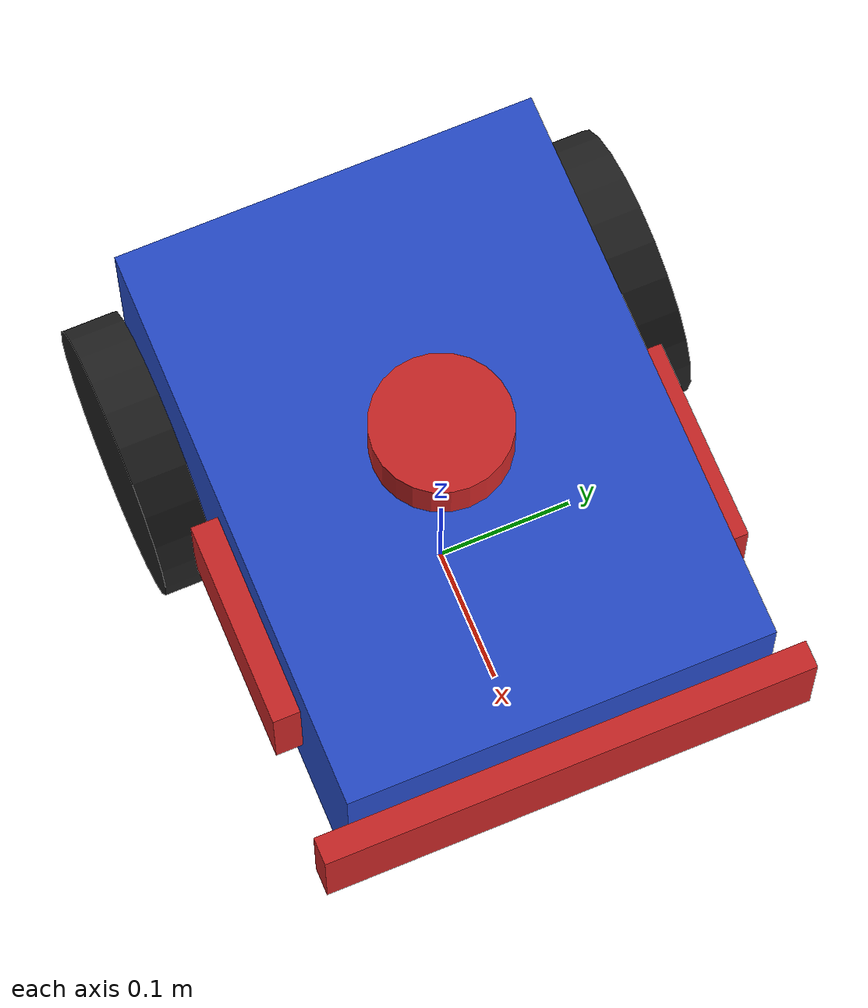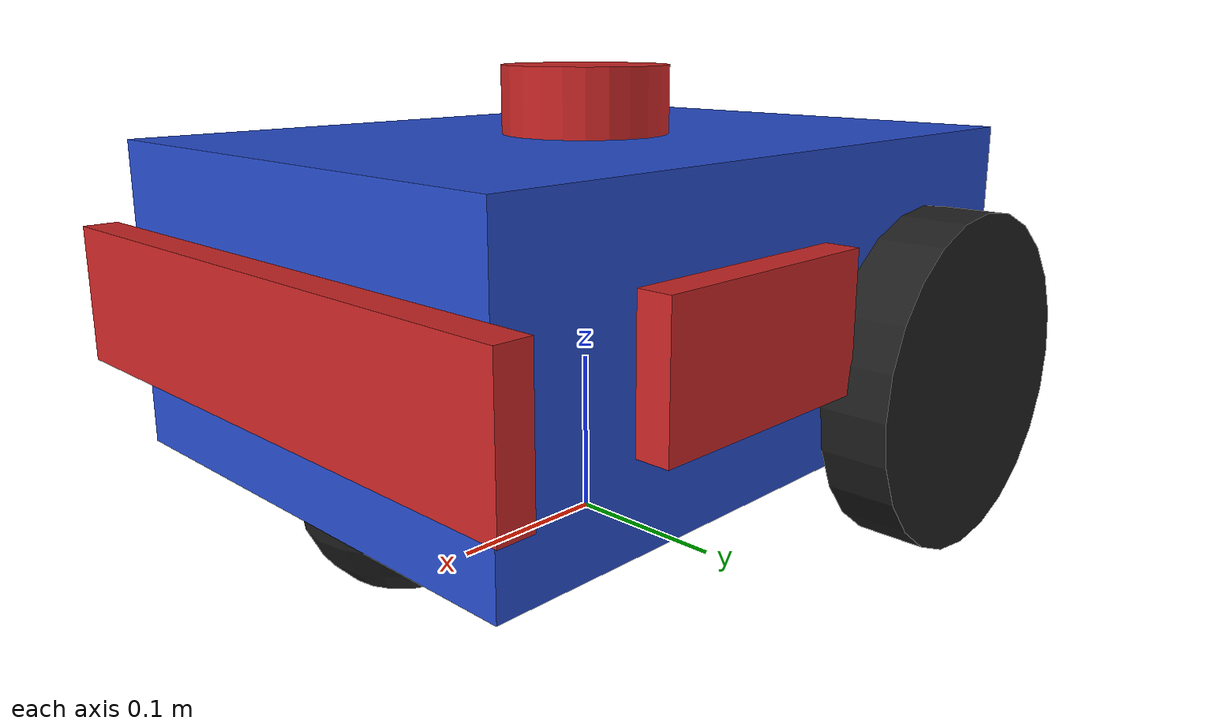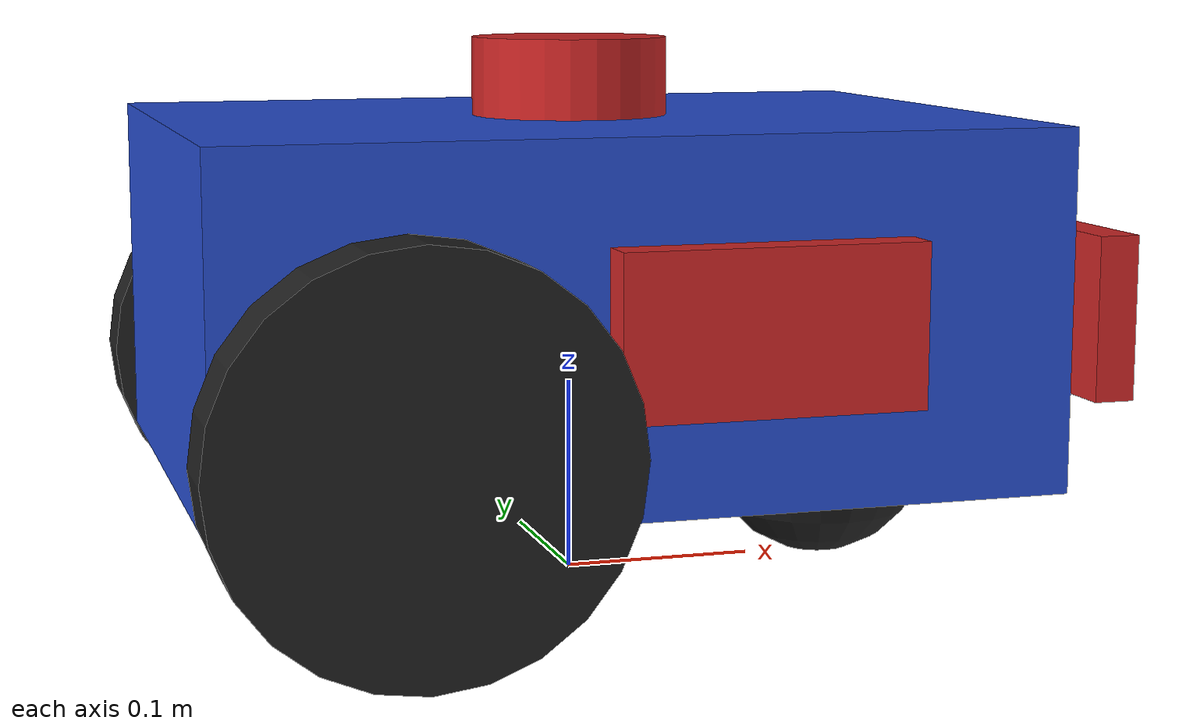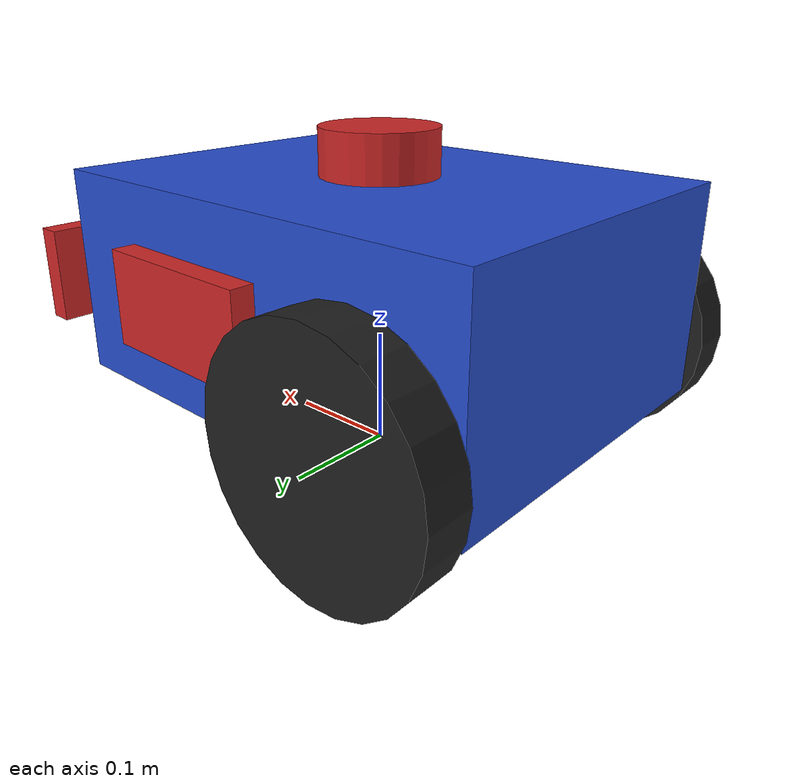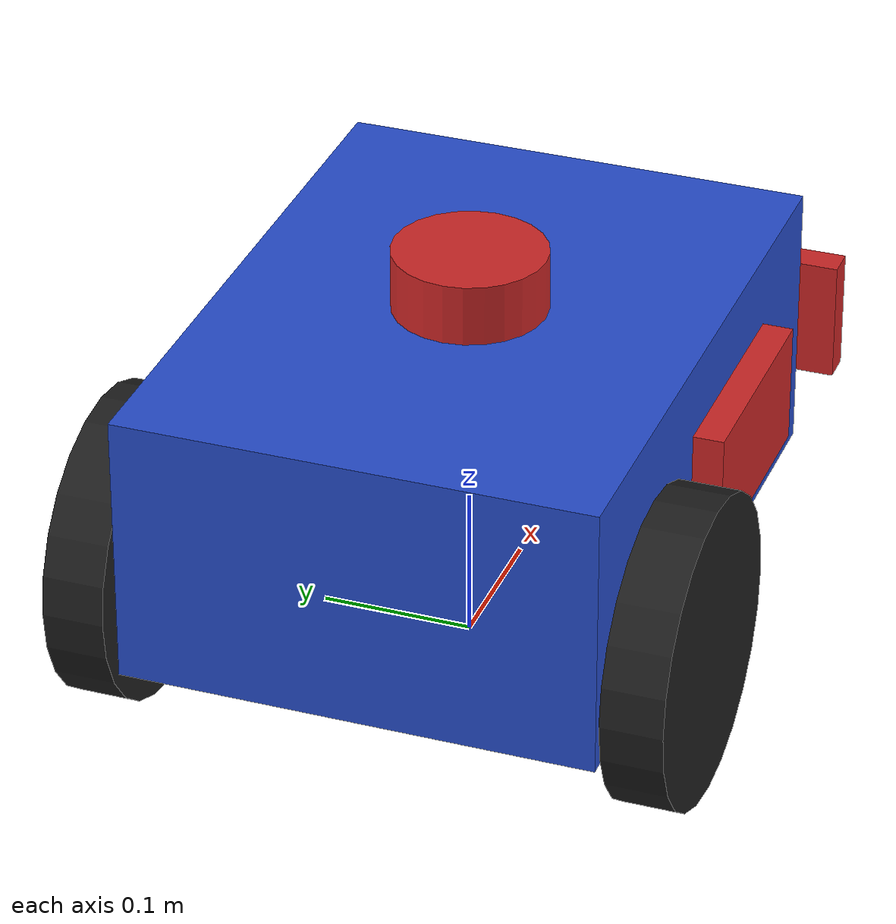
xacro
<?xml version="1.0"?>
<robot name="tortoisebot" xmlns:xacro="http://www.ros.org/wiki/xacro">

  <!-- Include the base robot description -->
  <xacro:include filename="$(find tortoisebot_description)/urdf/tortoisebot.urdf.xacro"/>

  <!-- Include Gazebo-specific elements when needed -->
  <xacro:arg name="gazebo" default="false"/>
  <xacro:if value="$(arg gazebo)">
    <xacro:include filename="$(find tortoisebot_description)/urdf/tortoisebot_gazebo.xacro"/>
  </xacro:if>

</robot>

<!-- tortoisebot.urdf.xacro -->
<robot name="tortoisebot" xmlns:xacro="http://www.ros.org/wiki/xacro">

  <!-- Include materials -->
  <xacro:include filename="$(find tortoisebot_description)/urdf/materials.xacro"/>

  <!-- Properties -->
  <xacro:property name="base_width" value="0.31"/>
  <xacro:property name="base_length" value="0.42"/>
  <xacro:property name="base_height" value="0.18"/>
  <xacro:property name="wheel_radius" value="0.10"/>
  <xacro:property name="wheel_width" value="0.04"/>
  <xacro:property name="wheel_ygap" value="0.025"/>
  <xacro:property name="wheel_zoff" value="0.05"/>
  <xacro:property name="wheel_xoff" value="0.12"/>
  <xacro:property name="caster_xoff" value="0.14"/>

  <!-- Base Link -->
  <link name="base_link">
    <visual>
      <geometry>
        <box size="${base_length} ${base_width} ${base_height}"/>
      </geometry>
      <material name="blue"/>
    </visual>
    <collision>
      <geometry>
        <box size="${base_length} ${base_width} ${base_height}"/>
      </geometry>
    </collision>
    <inertial>
      <mass value="10"/>
      <inertia ixx="0.583" ixy="0.0" ixz="0.0" iyy="0.533" iyz="0.0" izz="0.533"/>
    </inertial>
  </link>

  <!-- Base Footprint -->
  <link name="base_footprint"/>
  <joint name="base_joint" type="fixed">
    <parent link="base_footprint"/>
    <child link="base_link"/>
    <origin xyz="0.0 0.0 ${wheel_radius + wheel_zoff}" rpy="0 0 0"/>
  </joint>

  <!-- Wheels Macro -->
  <xacro:macro name="wheel" params="prefix x_reflect y_reflect">
    <link name="${prefix}_link">
      <visual>
        <origin xyz="0 0 0" rpy="${pi/2} 0 0"/>
        <geometry>
          <cylinder radius="${wheel_radius}" length="${wheel_width}"/>
        </geometry>
        <material name="black"/>
      </visual>
      <collision>
        <origin xyz="0 0 0" rpy="${pi/2} 0 0"/>
        <geometry>
          <cylinder radius="${wheel_radius}" length="${wheel_width}"/>
        </geometry>
      </collision>
      <inertial>
        <mass value="2.5"/>
        <origin xyz="0 0 0" rpy="${pi/2} 0 0"/>
        <inertia ixx="0.0125" ixy="0.0" ixz="0.0" iyy="0.0125" iyz="0.0" izz="0.0125"/>
      </inertial>
    </link>
    <joint name="${prefix}_joint" type="continuous">
      <parent link="base_link"/>
      <child link="${prefix}_link"/>
      <origin xyz="${x_reflect * wheel_xoff} ${y_reflect * (base_width/2 + wheel_ygap)} ${-wheel_zoff}" rpy="0 0 0"/>
      <axis xyz="0 1 0"/>
      <dynamics damping="0.1" friction="0.1"/>
    </joint>
  </xacro:macro>

  <xacro:wheel prefix="drivewhl_l" x_reflect="-1" y_reflect="1"/>
  <xacro:wheel prefix="drivewhl_r" x_reflect="-1" y_reflect="-1"/>

  <!-- Caster Wheel -->
  <link name="front_caster">
    <visual>
      <geometry>
        <sphere radius="${wheel_radius + wheel_zoff - (base_height / 2)}"/>
      </geometry>
      <material name="black"/>
    </visual>
    <collision>
      <geometry>
        <sphere radius="${wheel_radius + wheel_zoff - (base_height / 2)}"/>
      </geometry>
    </collision>
    <inertial>
      <mass value="0.5"/>
      <inertia ixx="0.1" ixy="0.0" ixz="0.0" iyy="0.1" iyz="0.0" izz="0.1"/>
    </inertial>
  </link>
  <joint name="caster_joint" type="fixed">
    <parent link="base_link"/>
    <child link="front_caster"/>
    <origin xyz="${caster_xoff} 0.0 ${-(base_height / 2)}" rpy="0 0 0"/>
  </joint>

  <!-- IMU -->
  <link name="imu_link">
    <visual>
      <geometry>
        <box size="0.1 0.1 0.1"/>
      </geometry>
      <material name="red"/>
    </visual>
    <collision>
      <geometry>
        <box size="0.1 0.1 0.1"/>
      </geometry>
    </collision>
    <inertial>
      <mass value="0.1"/>
      <inertia ixx="0.001" ixy="0.0" ixz="0.0" iyy="0.001" iyz="0.0" izz="0.001"/>
    </inertial>
  </link>
  <joint name="imu_joint" type="fixed">
    <parent link="base_link"/>
    <child link="imu_link"/>
    <origin xyz="0 0 0.01" rpy="0 0 0"/>
  </joint>

  <!-- Front Bumper -->
  <link name="front_bumper_link">
    <visual>
      <geometry>
        <box size="0.02 ${base_width + 0.05} 0.08"/>
      </geometry>
      <material name="red"/>
    </visual>
    <collision name="front_bumper_collision">
      <geometry>
        <box size="0.02 ${base_width + 0.05} 0.08"/>
      </geometry>
    </collision>
    <inertial>
      <mass value="0.1"/>
      <inertia ixx="0.001" ixy="0.0" ixz="0.0" iyy="0.001" iyz="0.0" izz="0.001"/>
    </inertial>
  </link>

  <joint name="front_bumper_joint" type="fixed">
    <parent link="base_link"/>
    <child link="front_bumper_link"/>
    <origin xyz="${base_length/2 + 0.01} 0 0" rpy="0 0 0"/>
  </joint>

  <!-- Left Bumper -->
  <link name="left_bumper_link">
    <visual>
      <geometry>
        <box size="0.15 0.02 0.08"/>
      </geometry>
      <material name="red"/>
    </visual>
    <collision name="left_bumper_collision">
      <geometry>
        <box size="0.15 0.02 0.08"/>
      </geometry>
    </collision>
    <inertial>
      <mass value="0.1"/>
      <inertia ixx="0.001" ixy="0.0" ixz="0.0" iyy="0.001" iyz="0.0" izz="0.001"/>
    </inertial>
  </link>

  <joint name="left_bumper_joint" type="fixed">
    <parent link="base_link"/>
    <child link="left_bumper_link"/>
    <origin xyz="0.05 ${base_width/2 + 0.01} 0" rpy="0 0 0"/>
  </joint>

  <!-- Right Bumper -->
  <link name="right_bumper_link">
    <visual>
      <geometry>
        <box size="0.15 0.02 0.08"/>
      </geometry>
      <material name="red"/>
    </visual>
    <collision name="right_bumper_collision">
      <geometry>
        <box size="0.15 0.02 0.08"/>
      </geometry>
    </collision>
    <inertial>
      <mass value="0.1"/>
      <inertia ixx="0.001" ixy="0.0" ixz="0.0" iyy="0.001" iyz="0.0" izz="0.001"/>
    </inertial>
  </link>

  <joint name="right_bumper_joint" type="fixed">
    <parent link="base_link"/>
    <child link="right_bumper_link"/>
    <origin xyz="0.05 ${-(base_width/2 + 0.01)} 0" rpy="0 0 0"/>
  </joint>

  <!-- Lidar -->
  <link name="lidar_link">
    <visual>
      <geometry>
        <cylinder radius="0.05" length="0.04"/>
      </geometry>
      <material name="red"/>
    </visual>
    <collision>
      <geometry>
        <cylinder radius="0.05" length="0.04"/>
      </geometry>
    </collision>
    <inertial>
      <mass value="0.1"/>
      <inertia ixx="0.001" ixy="0.0" ixz="0.0" iyy="0.001" iyz="0.0" izz="0.001"/>
    </inertial>
  </link>
  <joint name="lidar_joint" type="fixed">
    <parent link="base_link"/>
    <child link="lidar_link"/>
    <origin xyz="0 0 ${base_height / 2 + 0.02}" rpy="0 0 0"/>
  </joint>

  <!-- ==================== Gazebo Plugins for Harmonic ==================== -->

  <!-- Gazebo Materials -->
  <gazebo reference="base_link">
    <material>Gazebo/Blue</material>
  </gazebo>

  <gazebo reference="drivewhl_l_link">
    <material>Gazebo/Black</material>
    <mu1>1.5</mu1>
    <mu2>1.5</mu2>
    <kp>1000000.0</kp>
    <kd>100.0</kd>
    <minDepth>0.001</minDepth>
    <maxVel>1.0</maxVel>
    <fdir1>1 0 0</fdir1>
  </gazebo>

  <gazebo reference="drivewhl_r_link">
    <material>Gazebo/Black</material>
    <mu1>1.5</mu1>
    <mu2>1.5</mu2>
    <kp>1000000.0</kp>
    <kd>100.0</kd>
    <minDepth>0.001</minDepth>
    <maxVel>1.0</maxVel>
    <fdir1>1 0 0</fdir1>
  </gazebo>

  <gazebo reference="front_caster">
    <material>Gazebo/Black</material>
    <mu1>0.1</mu1>
    <mu2>0.1</mu2>
    <kp>1000000.0</kp>
    <kd>100.0</kd>
    <minDepth>0.001</minDepth>
    <maxVel>1.0</maxVel>
  </gazebo>

  <gazebo reference="front_bumper_link">
    <material>Gazebo/Red</material>
  </gazebo>

  <gazebo reference="left_bumper_link">
    <material>Gazebo/Red</material>
  </gazebo>

  <gazebo reference="right_bumper_link">
    <material>Gazebo/Red</material>
  </gazebo>

  <!-- System Plugins -->
  <gazebo>
    <plugin filename="gz-sim-diff-drive-system" name="gz::sim::systems::DiffDrive">
      <left_joint>drivewhl_l_joint</left_joint>
      <right_joint>drivewhl_r_joint</right_joint>
      <wheel_separation>0.36</wheel_separation>
      <wheel_radius>0.10</wheel_radius>
      <topic>cmd_vel</topic>
      <odom_topic>odom</odom_topic>
      <frame_id>odom</frame_id>
      <child_frame_id>base_link</child_frame_id>
      <publish_odom>true</publish_odom>
      <publish_odom_tf>true</publish_odom_tf>
      <max_linear_velocity>2.0</max_linear_velocity>
      <max_angular_velocity>2.0</max_angular_velocity>
      <odom_publish_frequency>50</odom_publish_frequency>
    </plugin>
  </gazebo>

  <gazebo>
    <plugin filename="gz-sim-joint-state-publisher-system" name="gz::sim::systems::JointStatePublisher">
      <joint_name>drivewhl_l_joint</joint_name>
      <joint_name>drivewhl_r_joint</joint_name>
      <topic>/joint_states</topic>
      <update_rate>50</update_rate>
    </plugin>
  </gazebo>

  <gazebo>
    <plugin filename="gz-sim-pose-publisher-system" name="gz::sim::systems::PosePublisher">
      <publish_link_pose>true</publish_link_pose>
      <use_pose_vector_msg>true</use_pose_vector_msg>
      <static_publisher>true</static_publisher>
      <static_update_frequency>1</static_update_frequency>
    </plugin>
  </gazebo>

  <gazebo>
    <plugin filename="gz-sim-sensors-system" name="gz::sim::systems::Sensors">
      <render_engine>ogre2</render_engine>
    </plugin>
  </gazebo>

  <!-- IMU Sensor -->
  <gazebo reference="imu_link">
    <sensor name="tortoisebot_imu_sensor" type="imu">
      <always_on>1</always_on>
      <update_rate>100</update_rate>
      <visualize>true</visualize>
      <topic>imu</topic>
      <plugin filename="gz-sim-imu-system" name="gz::sim::systems::Imu">
        <initial_orientation_as_reference>false</initial_orientation_as_reference>
      </plugin>
    </sensor>
  </gazebo>

  <!-- Contact Sensors -->
  <gazebo reference="front_bumper_link">
    <sensor name="front_bumper_contact" type="contact">
      <contact>
        <collision>front_bumper_collision</collision>
      </contact>
      <always_on>true</always_on>
      <update_rate>50</update_rate>
      <plugin filename="gz-sim-contact-system" name="gz::sim::systems::Contact">
        <topic>bumper/front_contact</topic>
      </plugin>
    </sensor>
  </gazebo>

  <gazebo reference="left_bumper_link">
    <sensor name="left_bumper_contact" type="contact">
      <contact>
        <collision>left_bumper_collision</collision>
      </contact>
      <always_on>true</always_on>
      <update_rate>50</update_rate>
      <plugin filename="gz-sim-contact-system" name="gz::sim::systems::Contact">
        <topic>bumper/left_contact</topic>
      </plugin>
    </sensor>
  </gazebo>

  <gazebo reference="right_bumper_link">
    <sensor name="right_bumper_contact" type="contact">
      <contact>
        <collision>right_bumper_collision</collision>
      </contact>
      <always_on>true</always_on>
      <update_rate>50</update_rate>
      <plugin filename="gz-sim-contact-system" name="gz::sim::systems::Contact">
        <topic>bumper/right_contact</topic>
      </plugin>
    </sensor>
  </gazebo>

  <!-- Lidar Sensor -->
  <gazebo reference="lidar_link">
    <sensor name="tortoisebot_lidar" type="gpu_lidar">
      <pose>0 0 0 0 0 0</pose>
      <topic>scan</topic>
      <update_rate>10</update_rate>
      <ray>
        <scan>
          <horizontal>
            <samples>360</samples>
            <resolution>1</resolution>
            <min_angle>-3.14159</min_angle>
            <max_angle>3.14159</max_angle>
          </horizontal>
        </scan>
        <range>
          <min>0.10</min>
          <max>12.0</max>
          <resolution>0.01</resolution>
        </range>
      </ray>
      <always_on>1</always_on>
      <visualize>false</visualize>
    </sensor>
  </gazebo>

</robot>
